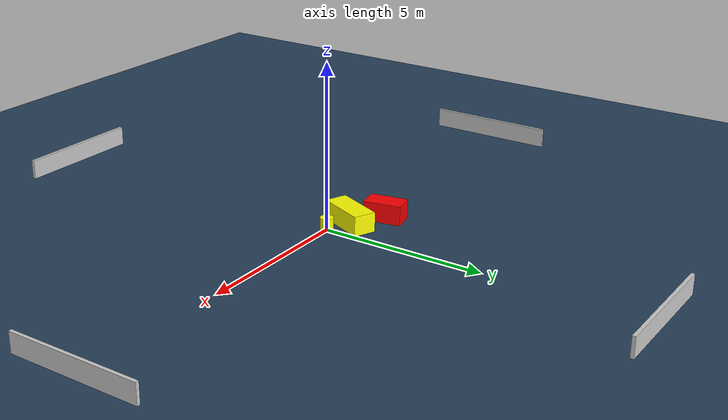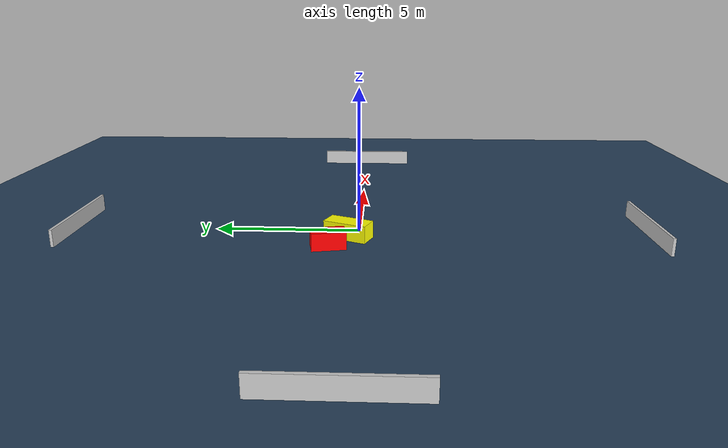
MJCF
<?xml version="1.0" ?>
<mujoco model="generated_environment">
  <option timestep="0.01" integrator="RK4" cone="elliptic"/>
  <default>
    <geom density="1"/>
  </default>
  <asset>
    <texture builtin="gradient" height="3072" name="skybox" rgb1="0.3 0.5 0.7" rgb2="0 0 0" type="skybox" width="512"/>
    <texture builtin="checker" height="300" name="groundplane" rgb1="0.2 0.3 0.4" rgb2="0.1 0.2 0.3" type="2d" width="300"/>
    <material name="groundplane" reflectance="0.2" texrepeat="5 5" texture="groundplane"/>
  </asset>
  <worldbody>
    <light dir="0 0 -1" directional="true" pos="0 0 1.5"/>
    <geom condim="3" friction="0.5 0.005 0.001" material="groundplane" name="floor" pos="0 0 0" size="0 0 0.05" type="plane"/>
    <body name="walls">
      <geom name="wall_1" condim="4" pos="-10.0 0.0 0.3" rgba="0.800000011920929 0.800000011920929 0.800000011920929 1.0" size="0.05 2.0 0.3" type="box"/>
      <geom name="wall_2" condim="4" pos="10.0 0.0 0.3" rgba="0.800000011920929 0.800000011920929 0.800000011920929 1.0" size="0.05 2.0 0.3" type="box"/>
      <geom name="wall_3" condim="4" pos="0.0 -10.0 0.3" rgba="0.800000011920929 0.800000011920929 0.800000011920929 1.0" size="2.0 0.05 0.3" type="box"/>
      <geom name="wall_4" condim="4" pos="0.0 10.0 0.3" rgba="0.800000011920929 0.800000011920929 0.800000011920929 1.0" size="2.0 0.05 0.3" type="box"/>
    </body>
    <body name="robot">
      <joint name="joint_x" type="slide" pos="0 0 0" axis="1 0 0"/>
      <joint name="joint_y" type="slide" pos="0 0 0" axis="0 1 0"/>
      <geom name="robot" type="cylinder" pos="0.0 0.0 0.2" size="0.2 0.2 0.0" mass="5.0" friction="1.0 0.005 0.0001" condim="4" rgba="1.0 1.0 0.0 1.0"/>
    </body>
    <body name="obstacle_1_movable">
      <geom name="obstacle_1_movable" condim="4" pos="-0.6786282124531146 0.34597487343086647 0.3" euler="0 0 67.22857104614259" friction="0.0 0.005 0.001" rgba="1.0 1.0 0.0 1.0" size="0.7696965982815234 0.3451708751124537 0.3" type="box" mass="0.1"/>
      <joint type="free"/>
    </body>
    <body name="obstacle_2_static">
      <geom name="obstacle_2_static" condim="4" pos="-1.637389923825083 0.9566776180524068 0.3" euler="0 0 190.9060380195401" friction="0.0 0.005 0.001" rgba="1.0 0.0 0.0 1.0" size="0.32353220116635606 0.5718711552331704 0.3" type="box"/>
    </body>
  </worldbody>
  <actuator>
    <motor name="actuator_x" joint="joint_x" gear="1" ctrlrange="-1 1"/>
    <motor name="actuator_y" joint="joint_y" gear="1" ctrlrange="-1 1"/>
  </actuator>
</mujoco>
